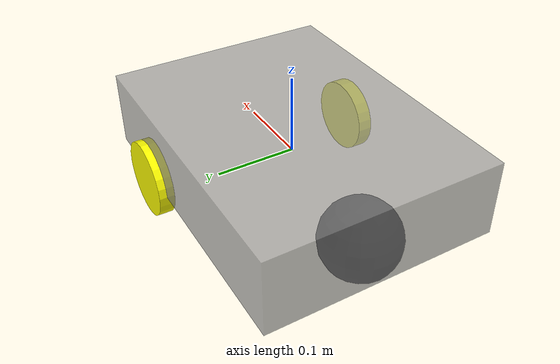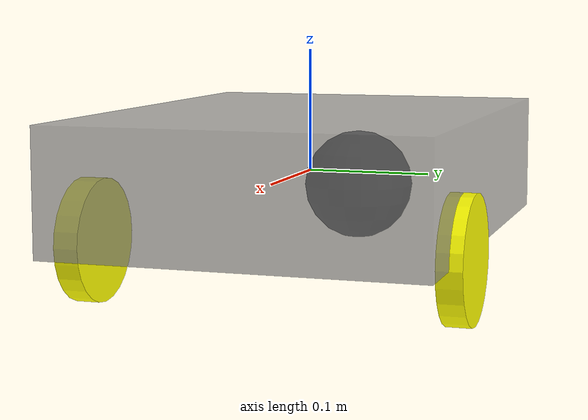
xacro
<?xml version="1.0"?>
<robot xmlns:xacro="http://www.ros.org/wiki/xacro" name="modular_bot">

  <!-- =========================
       Parameters
       ========================= -->
  <!-- Base -->
  <xacro:property name="base_length" value="0.40"/>
  <xacro:property name="base_width"  value="0.30"/>
  <xacro:property name="base_height" value="0.10"/>
  <xacro:property name="base_mass"   value="5.0"/>

  <!-- Ground clearance:
       Positive means wheels/caster sit slightly LOWER than the base bottom,
       so they contact ground before the body. -->
  <xacro:property name="wheel_ground_clearance" value="0.05"/> <!-- 5 cm -->
  <xacro:property name="caster_ground_clearance" value="0.03"/> <!-- 3 cm -->

  <!-- Drive wheels -->
  <xacro:property name="wheel_radius"     value="0.05"/>
  <xacro:property name="wheel_width"      value="0.02"/>
  <xacro:property name="wheel_separation" value="0.30"/>  <!-- center-to-center across Y -->
  <xacro:property name="drive_wheel_x"    value="0.10"/>  <!-- shift axle forward (X) -->
  <xacro:property name="wheel_mass"       value="0.30"/>

  <!-- Caster (passive sphere) -->
  <xacro:property name="caster_radius" value="0.05"/>
  <xacro:property name="caster_x"      value="-0.15"/>
  <xacro:property name="caster_mass"   value="0.20"/>

  <!-- Derived Z offsets (relative to base_link centered in the box) -->
  <!-- base bottom is at z = -base_height/2 -->
  <!-- wheel center z: base bottom - clearance + wheel_radius -->
  <xacro:property name="drive_wheel_z"
                  value="${-base_height*0.5 - wheel_ground_clearance + wheel_radius}"/>
  <!-- caster center z: base bottom - clearance + caster_radius -->
  <xacro:property name="caster_z"
                  value="${-base_height*0.5 - caster_ground_clearance + caster_radius}"/>

  <!-- =========================
       Materials (GLOBAL)
       ========================= -->
  <material name="yellow">
    <color rgba="1 1 0 1"/>
  </material>

  <material name="black">
    <color rgba="0.05 0.05 0.05 1"/>
  </material>

  <!-- Slight transparency to help see the caster under the body in RViz -->
  <material name="gray">
    <color rgba="0.6 0.6 0.6 0.7"/>
  </material>

  <!-- =========================
       Links
       ========================= -->

  <!-- Base Link -->
  <link name="base_link">
    <visual>
      <origin xyz="0 0 0" rpy="0 0 0"/>
      <geometry>
        <box size="${base_length} ${base_width} ${base_height}"/>
      </geometry>
      <material name="gray"/>
    </visual>

    <collision>
      <origin xyz="0 0 0" rpy="0 0 0"/>
      <geometry>
        <box size="${base_length} ${base_width} ${base_height}"/>
      </geometry>
    </collision>

    <inertial>
      <origin xyz="0 0 0" rpy="0 0 0"/>
      <mass value="${base_mass}"/>
      <!-- Placeholder inertia (OK for now; we can compute later) -->
      <inertia ixx="0.10" iyy="0.10" izz="0.10"
               ixy="0.0" ixz="0.0" iyz="0.0"/>
    </inertial>
  </link>

  <!-- Left Drive Wheel -->
  <link name="left_wheel_link">
    <visual>
      <!-- Cylinder axis is Z by default; rotate so axis aligns with +Y -->
      <origin xyz="0 0 0" rpy="1.5708 0 0"/>
      <geometry>
        <cylinder radius="${wheel_radius}" length="${wheel_width}"/>
      </geometry>
      <material name="yellow"/>
    </visual>

    <collision>
      <origin xyz="0 0 0" rpy="1.5708 0 0"/>
      <geometry>
        <cylinder radius="${wheel_radius}" length="${wheel_width}"/>
      </geometry>
    </collision>

    <inertial>
      <origin xyz="0 0 0" rpy="0 0 0"/>
      <mass value="${wheel_mass}"/>
      <!-- Placeholder inertia -->
      <inertia ixx="0.0005" iyy="0.0005" izz="0.0005"
               ixy="0.0" ixz="0.0" iyz="0.0"/>
    </inertial>
  </link>

  <!-- Right Drive Wheel -->
  <link name="right_wheel_link">
    <visual>
      <origin xyz="0 0 0" rpy="1.5708 0 0"/>
      <geometry>
        <cylinder radius="${wheel_radius}" length="${wheel_width}"/>
      </geometry>
      <material name="yellow"/>
    </visual>

    <collision>
      <origin xyz="0 0 0" rpy="1.5708 0 0"/>
      <geometry>
        <cylinder radius="${wheel_radius}" length="${wheel_width}"/>
      </geometry>
    </collision>

    <inertial>
      <origin xyz="0 0 0" rpy="0 0 0"/>
      <mass value="${wheel_mass}"/>
      <inertia ixx="0.0005" iyy="0.0005" izz="0.0005"
               ixy="0.0" ixz="0.0" iyz="0.0"/>
    </inertial>
  </link>

  <!-- Passive spherical caster -->
  <link name="caster_link">
    <visual>
      <origin xyz="0 0 0" rpy="0 0 0"/>
      <geometry>
        <sphere radius="${caster_radius}"/>
      </geometry>
      <material name="black"/>
    </visual>

    <collision>
      <origin xyz="0 0 0" rpy="0 0 0"/>
      <geometry>
        <sphere radius="${caster_radius}"/>
      </geometry>
    </collision>

    <inertial>
      <origin xyz="0 0 0" rpy="0 0 0"/>
      <mass value="${caster_mass}"/>
      <inertia ixx="0.0001" iyy="0.0001" izz="0.0001"
               ixy="0.0" ixz="0.0" iyz="0.0"/>
    </inertial>
  </link>

  <!-- =========================
       Joints
       ========================= -->

  <joint name="left_wheel_joint" type="continuous">
    <parent link="base_link"/>
    <child link="left_wheel_link"/>
    <origin xyz="${drive_wheel_x} ${wheel_separation*0.5} ${drive_wheel_z}" rpy="0 0 0"/>
    <axis xyz="0 1 0"/>
  </joint>

  <joint name="right_wheel_joint" type="continuous">
    <parent link="base_link"/>
    <child link="right_wheel_link"/>
    <origin xyz="${drive_wheel_x} -${wheel_separation*0.5} ${drive_wheel_z}" rpy="0 0 0"/>
    <axis xyz="0 1 0"/>
  </joint>

  <joint name="caster_joint" type="fixed">
    <parent link="base_link"/>
    <child link="caster_link"/>
    <origin xyz="${caster_x} 0 ${caster_z}" rpy="0 0 0"/>
  </joint>

  <!-- =========================
       Gazebo Harmonic: Thin actuator I/O for drive wheel joints only
       ========================= -->
  <gazebo>
    <plugin filename="gz-sim-joint-controller-system"
            name="gz::sim::systems::JointController">
      <joint_name>left_wheel_joint</joint_name>
    </plugin>

    <plugin filename="gz-sim-joint-controller-system"
            name="gz::sim::systems::JointController">
      <joint_name>right_wheel_joint</joint_name>
    </plugin>
  </gazebo>

</robot>
